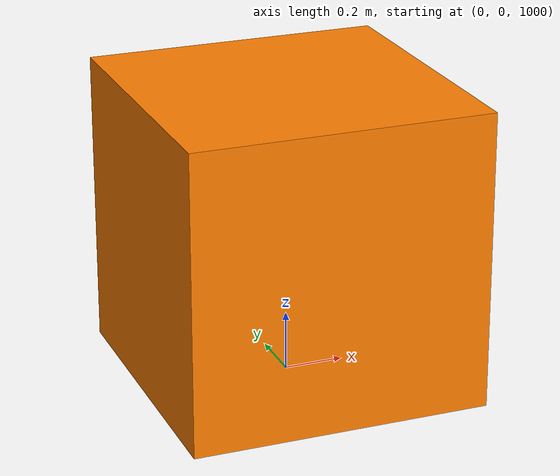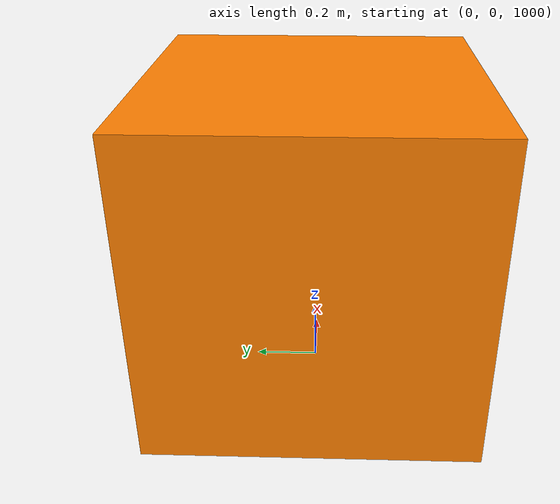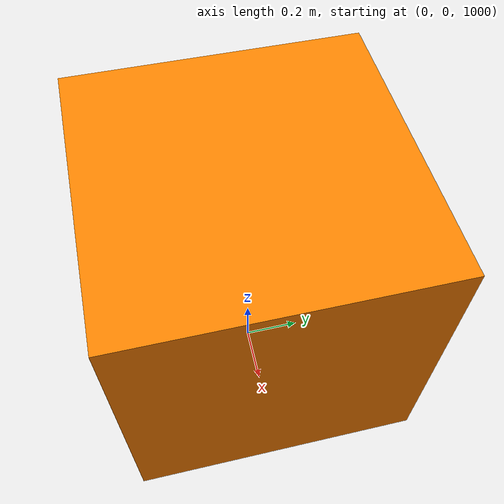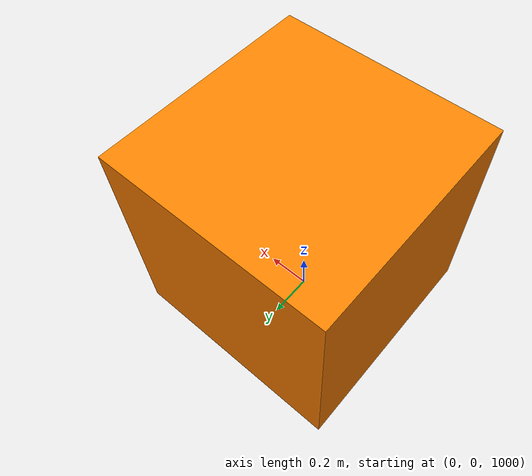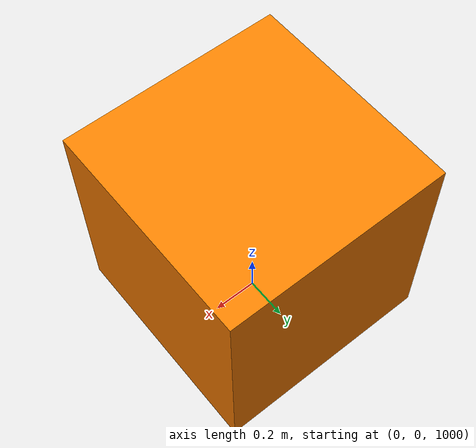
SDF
<?xml version="1.0" ?>
<sdf version="1.9">
  <world name="pressure">
    <physics name="1ms" type="ignored">
      <max_step_size>0.001</max_step_size>
      <real_time_factor>1.0</real_time_factor>
    </physics>

    <plugin filename="gz-sim-physics-system" name="gz::sim::systems::Physics"/>
    <plugin filename="gz-sim-user-commands-system" name="gz::sim::systems::UserCommands"/>
    <plugin filename="gz-sim-scene-broadcaster-system" name="gz::sim::systems::SceneBroadcaster"/>

    <plugin filename="gz-sim-air-pressure-system" name="gz::sim::systems::AirPressure"/>
    <plugin filename="gz-sim-altimeter-system" name="gz::sim::systems::Altimeter"/>

    <light type="directional" name="sun">
      <cast_shadows>true</cast_shadows>
      <pose>0 0 10 0 0 0</pose>
      <diffuse>0.8 0.8 0.8 1</diffuse>
      <specular>0.2 0.2 0.2 1</specular>
      <direction>-0.5 0.1 -0.9</direction>
    </light>

    <model name="ground">
      <static>true</static>
      <pose>0 0 -5 0 0 0</pose>
      <link name="link">
        <collision name="collision">
          <geometry><box><size>100 100 10</size></box></geometry>
        </collision>
        <visual name="visual">
          <geometry><box><size>100 100 10</size></box></geometry>
          <material>
            <ambient>0.8 0.8 0.8 1</ambient>
            <diffuse>0.8 0.8 0.8 1</diffuse>
          </material>
        </visual>
      </link>
    </model>

    <!-- Centre at 1000.5 m, so the altimeter will fall at -1000 -->
    <model name="sensors_box">
      <pose>0 0 1000.5 0 0 0</pose>
      <link name="link">
        <inertial>
          <mass>1.0</mass>
          <inertia>
            <ixx>0.1667</ixx>
            <iyy>0.1667</iyy>
            <izz>0.1667</izz>
          </inertia>
        </inertial>
        <collision name="collision">
          <geometry><box><size>1 1 1</size></box></geometry>
        </collision>
        <visual name="visual">
          <geometry><box><size>1 1 1</size></box></geometry>
          <material>
            <ambient>1 0.5 0 1</ambient>
            <diffuse>1 0.5 0 1</diffuse>
          </material>
        </visual>

        <sensor name="altimeter" type="altimeter">
          <always_on>1</always_on>
          <update_rate>30</update_rate>
          <topic>altimeter</topic>
          <altimeter>
            <vertical_position>
              <noise type="gaussian">
                <mean>0.0</mean>
                <stddev>0.1</stddev>
              </noise>
            </vertical_position>
            <vertical_velocity>
              <noise type="gaussian">
                <mean>0.0</mean>
                <stddev>0.1</stddev>
              </noise>
            </vertical_velocity>
          </altimeter>
        </sensor>

        <sensor name="air_pressure" type="air_pressure">
          <always_on>1</always_on>
          <update_rate>30</update_rate>
          <topic>air_pressure</topic>
          <air_pressure>
            <!-- Height of the world origin: the ground top is at 0 m -->
            <reference_altitude>0</reference_altitude>
            <pressure>
              <noise type="gaussian">
                <mean>0.0</mean>
                <stddev>1.0</stddev>
              </noise>
            </pressure>
          </air_pressure>
        </sensor>
      </link>
    </model>
  </world>
</sdf>
